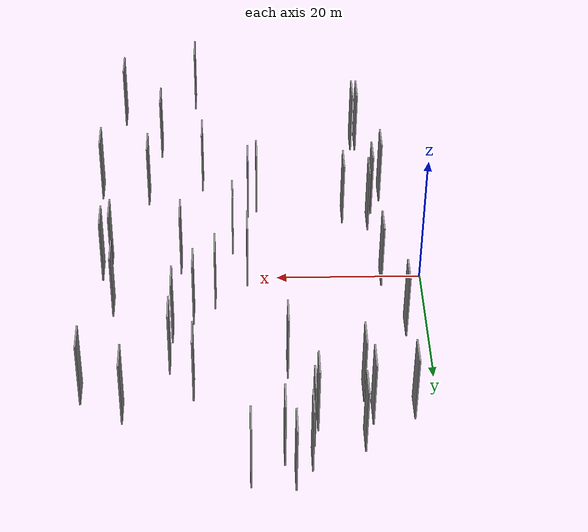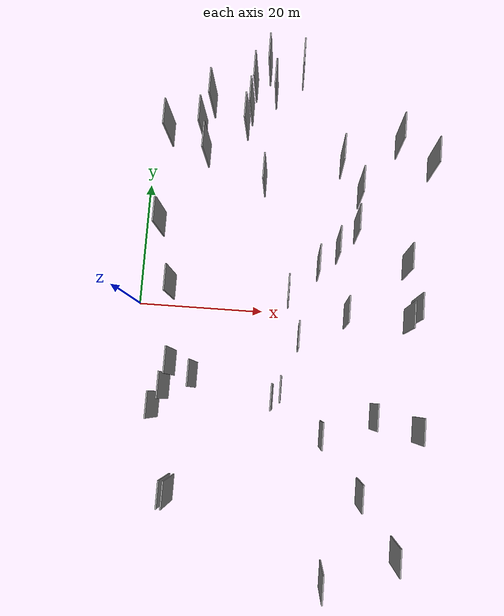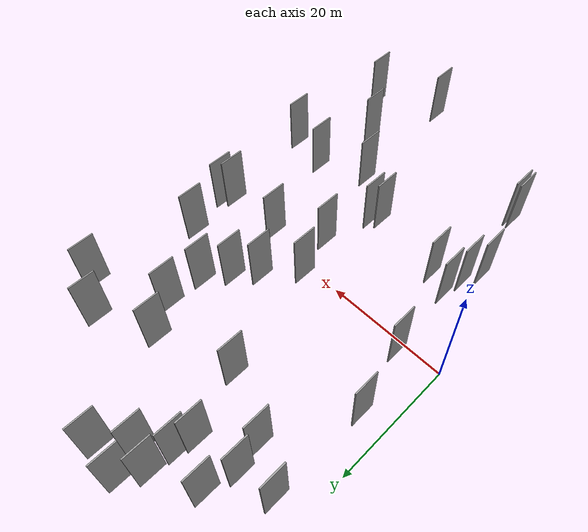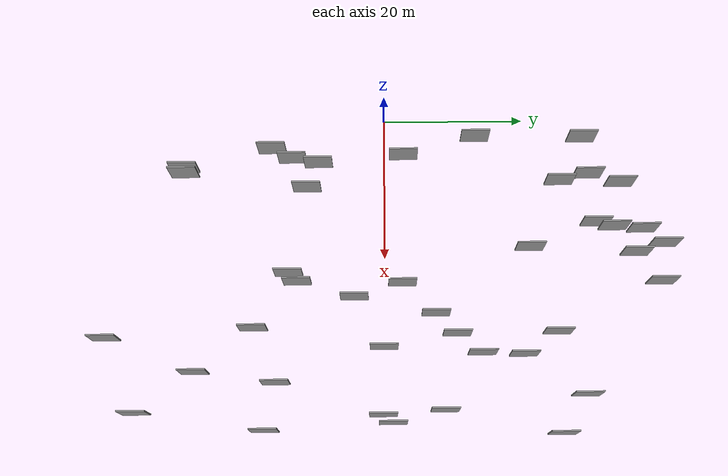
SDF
<sdf version="1.6">
 <world name="default">
  <scene>
   <sky><clouds><speed>12</speed></clouds></sky>
   <ambient>0.4 0.4 0.4 1</ambient>
   <background>0.7 0.7 0.7 1</background>
   <shadows>1</shadows>
  </scene>
  <gravity>0 0 -9.8066</gravity>
  <magnetic_field>6e-06 2.3e-05 -4.2e-05</magnetic_field>
  <physics default="0" name="default_physics" type="ode">
   <ode>
    <solver>
     <type>quick</type>
     <iters>10</iters>
     <sor>1.0</sor>
     <use_dynamic_moi_rescaling>0</use_dynamic_moi_rescaling>
    </solver>
    <constraints>
     <cfm>0</cfm>
     <erp>0.2</erp>
     <contact_max_correcting_vel>100</contact_max_correcting_vel>
     <contact_surface_layer>0.001</contact_surface_layer>
    </constraints>
   </ode>
   <max_step_size>0.004</max_step_size>
   <real_time_factor>1</real_time_factor>
   <real_time_update_rate>250</real_time_update_rate>
  </physics>
  <light name="sun" type="directional">
   <pose>0 0 10 0 0 0</pose>
   <diffuse>0.8 0.8 0.8 1</diffuse>
   <specular>0.2 0.2 0.2 1</specular>
   <attenuation>
    <range>1000</range>
    <constant>0.9</constant>
    <linear>0.01</linear>
    <quadratic>0.001</quadratic>
   </attenuation>
   <direction>-0.5 0.1 -0.9</direction>
  </light>
  <model name="grey_wall_1">
   <static>1</static>
   <pose>42.2858 8.4306 2.5 0.000000 0.000000 1.570796</pose>
   <link name="link">
    <pose>0 0 5.00 0 0 0</pose>
    <collision name="collision"><geometry><box><size>4.00 0.2 10.00</size></box></geometry></collision>
    <visual name="visual">
     <cast_shadows>0</cast_shadows>
     <geometry><box><size>4.00 0.2 10.00</size></box></geometry>
     <material>
      <script>
       <uri>model://grey_wall/materials/scripts</uri>
       <uri>model://grey_wall/materials/textures</uri>
       <name>vrc/grey_wall</name>
      </script>
     </material>
    </visual>
   </link>
  </model>
  <model name="grey_wall_2">
   <static>1</static>
   <pose>9.9759 33.6062 2.5 0.000000 0.000000 1.570796</pose>
   <link name="link">
    <pose>0 0 5.00 0 0 0</pose>
    <collision name="collision"><geometry><box><size>4.00 0.2 10.00</size></box></geometry></collision>
    <visual name="visual">
     <cast_shadows>0</cast_shadows>
     <geometry><box><size>4.00 0.2 10.00</size></box></geometry>
     <material>
      <script>
       <uri>model://grey_wall/materials/scripts</uri>
       <uri>model://grey_wall/materials/textures</uri>
       <name>vrc/grey_wall</name>
      </script>
     </material>
    </visual>
   </link>
  </model>
  <model name="grey_wall_3">
   <static>1</static>
   <pose>7.5965 -28.5167 2.5 0.000000 0.000000 1.570796</pose>
   <link name="link">
    <pose>0 0 5.00 0 0 0</pose>
    <collision name="collision"><geometry><box><size>4.00 0.2 10.00</size></box></geometry></collision>
    <visual name="visual">
     <cast_shadows>0</cast_shadows>
     <geometry><box><size>4.00 0.2 10.00</size></box></geometry>
     <material>
      <script>
       <uri>model://grey_wall/materials/scripts</uri>
       <uri>model://grey_wall/materials/textures</uri>
       <name>vrc/grey_wall</name>
      </script>
     </material>
    </visual>
   </link>
  </model>
  <model name="grey_wall_4">
   <static>1</static>
   <pose>30.5016 -18.7992 2.5 0.000000 0.000000 1.570796</pose>
   <link name="link">
    <pose>0 0 5.00 0 0 0</pose>
    <collision name="collision"><geometry><box><size>4.00 0.2 10.00</size></box></geometry></collision>
    <visual name="visual">
     <cast_shadows>0</cast_shadows>
     <geometry><box><size>4.00 0.2 10.00</size></box></geometry>
     <material>
      <script>
       <uri>model://grey_wall/materials/scripts</uri>
       <uri>model://grey_wall/materials/textures</uri>
       <name>vrc/grey_wall</name>
      </script>
     </material>
    </visual>
   </link>
  </model>
  <model name="grey_wall_5">
   <static>1</static>
   <pose>3.4285 28.2088 2.5 0.000000 0.000000 1.570796</pose>
   <link name="link">
    <pose>0 0 5.00 0 0 0</pose>
    <collision name="collision"><geometry><box><size>4.00 0.2 10.00</size></box></geometry></collision>
    <visual name="visual">
     <cast_shadows>0</cast_shadows>
     <geometry><box><size>4.00 0.2 10.00</size></box></geometry>
     <material>
      <script>
       <uri>model://grey_wall/materials/scripts</uri>
       <uri>model://grey_wall/materials/textures</uri>
       <name>vrc/grey_wall</name>
      </script>
     </material>
    </visual>
   </link>
  </model>
  <model name="grey_wall_6">
   <static>1</static>
   <pose>16.2536 32.6822 2.5 0.000000 0.000000 1.570796</pose>
   <link name="link">
    <pose>0 0 5.00 0 0 0</pose>
    <collision name="collision"><geometry><box><size>4.00 0.2 10.00</size></box></geometry></collision>
    <visual name="visual">
     <cast_shadows>0</cast_shadows>
     <geometry><box><size>4.00 0.2 10.00</size></box></geometry>
     <material>
      <script>
       <uri>model://grey_wall/materials/scripts</uri>
       <uri>model://grey_wall/materials/textures</uri>
       <name>vrc/grey_wall</name>
      </script>
     </material>
    </visual>
   </link>
  </model>
  <model name="grey_wall_7">
   <static>1</static>
   <pose>22.7090 -13.7084 2.5 0.000000 0.000000 1.570796</pose>
   <link name="link">
    <pose>0 0 5.00 0 0 0</pose>
    <collision name="collision"><geometry><box><size>4.00 0.2 10.00</size></box></geometry></collision>
    <visual name="visual">
     <cast_shadows>0</cast_shadows>
     <geometry><box><size>4.00 0.2 10.00</size></box></geometry>
     <material>
      <script>
       <uri>model://grey_wall/materials/scripts</uri>
       <uri>model://grey_wall/materials/textures</uri>
       <name>vrc/grey_wall</name>
      </script>
     </material>
    </visual>
   </link>
  </model>
  <model name="grey_wall_8">
   <static>1</static>
   <pose>45.6253 25.0832 2.5 0.000000 0.000000 1.570796</pose>
   <link name="link">
    <pose>0 0 5.00 0 0 0</pose>
    <collision name="collision"><geometry><box><size>4.00 0.2 10.00</size></box></geometry></collision>
    <visual name="visual">
     <cast_shadows>0</cast_shadows>
     <geometry><box><size>4.00 0.2 10.00</size></box></geometry>
     <material>
      <script>
       <uri>model://grey_wall/materials/scripts</uri>
       <uri>model://grey_wall/materials/textures</uri>
       <name>vrc/grey_wall</name>
      </script>
     </material>
    </visual>
   </link>
  </model>
  <model name="grey_wall_9">
   <static>1</static>
   <pose>15.6876 30.0707 2.5 0.000000 0.000000 1.570796</pose>
   <link name="link">
    <pose>0 0 5.00 0 0 0</pose>
    <collision name="collision"><geometry><box><size>4.00 0.2 10.00</size></box></geometry></collision>
    <visual name="visual">
     <cast_shadows>0</cast_shadows>
     <geometry><box><size>4.00 0.2 10.00</size></box></geometry>
     <material>
      <script>
       <uri>model://grey_wall/materials/scripts</uri>
       <uri>model://grey_wall/materials/textures</uri>
       <name>vrc/grey_wall</name>
      </script>
     </material>
    </visual>
   </link>
  </model>
  <model name="grey_wall_10">
   <static>1</static>
   <pose>16.6272 36.7826 2.5 0.000000 0.000000 1.570796</pose>
   <link name="link">
    <pose>0 0 5.00 0 0 0</pose>
    <collision name="collision"><geometry><box><size>4.00 0.2 10.00</size></box></geometry></collision>
    <visual name="visual">
     <cast_shadows>0</cast_shadows>
     <geometry><box><size>4.00 0.2 10.00</size></box></geometry>
     <material>
      <script>
       <uri>model://grey_wall/materials/scripts</uri>
       <uri>model://grey_wall/materials/textures</uri>
       <name>vrc/grey_wall</name>
      </script>
     </material>
    </visual>
   </link>
  </model>
  <model name="grey_wall_11">
   <static>1</static>
   <pose>42.9296 -0.3088 2.5 0.000000 0.000000 1.570796</pose>
   <link name="link">
    <pose>0 0 5.00 0 0 0</pose>
    <collision name="collision"><geometry><box><size>4.00 0.2 10.00</size></box></geometry></collision>
    <visual name="visual">
     <cast_shadows>0</cast_shadows>
     <geometry><box><size>4.00 0.2 10.00</size></box></geometry>
     <material>
      <script>
       <uri>model://grey_wall/materials/scripts</uri>
       <uri>model://grey_wall/materials/textures</uri>
       <name>vrc/grey_wall</name>
      </script>
     </material>
    </visual>
   </link>
  </model>
  <model name="grey_wall_12">
   <static>1</static>
   <pose>24.1457 39.3764 2.5 0.000000 0.000000 1.570796</pose>
   <link name="link">
    <pose>0 0 5.00 0 0 0</pose>
    <collision name="collision"><geometry><box><size>4.00 0.2 10.00</size></box></geometry></collision>
    <visual name="visual">
     <cast_shadows>0</cast_shadows>
     <geometry><box><size>4.00 0.2 10.00</size></box></geometry>
     <material>
      <script>
       <uri>model://grey_wall/materials/scripts</uri>
       <uri>model://grey_wall/materials/textures</uri>
       <name>vrc/grey_wall</name>
      </script>
     </material>
    </visual>
   </link>
  </model>
  <model name="grey_wall_13">
   <static>1</static>
   <pose>19.9792 35.7818 2.5 0.000000 0.000000 1.570796</pose>
   <link name="link">
    <pose>0 0 5.00 0 0 0</pose>
    <collision name="collision"><geometry><box><size>4.00 0.2 10.00</size></box></geometry></collision>
    <visual name="visual">
     <cast_shadows>0</cast_shadows>
     <geometry><box><size>4.00 0.2 10.00</size></box></geometry>
     <material>
      <script>
       <uri>model://grey_wall/materials/scripts</uri>
       <uri>model://grey_wall/materials/textures</uri>
       <name>vrc/grey_wall</name>
      </script>
     </material>
    </visual>
   </link>
  </model>
  <model name="grey_wall_14">
   <static>1</static>
   <pose>6.9303 -9.3802 2.5 0.000000 0.000000 1.570796</pose>
   <link name="link">
    <pose>0 0 5.00 0 0 0</pose>
    <collision name="collision"><geometry><box><size>4.00 0.2 10.00</size></box></geometry></collision>
    <visual name="visual">
     <cast_shadows>0</cast_shadows>
     <geometry><box><size>4.00 0.2 10.00</size></box></geometry>
     <material>
      <script>
       <uri>model://grey_wall/materials/scripts</uri>
       <uri>model://grey_wall/materials/textures</uri>
       <name>vrc/grey_wall</name>
      </script>
     </material>
    </visual>
   </link>
  </model>
  <model name="grey_wall_15">
   <static>1</static>
   <pose>34.4124 19.6951 2.5 0.000000 0.000000 1.570796</pose>
   <link name="link">
    <pose>0 0 5.00 0 0 0</pose>
    <collision name="collision"><geometry><box><size>4.00 0.2 10.00</size></box></geometry></collision>
    <visual name="visual">
     <cast_shadows>0</cast_shadows>
     <geometry><box><size>4.00 0.2 10.00</size></box></geometry>
     <material>
      <script>
       <uri>model://grey_wall/materials/scripts</uri>
       <uri>model://grey_wall/materials/textures</uri>
       <name>vrc/grey_wall</name>
      </script>
     </material>
    </visual>
   </link>
  </model>
  <model name="grey_wall_16">
   <static>1</static>
   <pose>10.4565 -11.0433 2.5 0.000000 0.000000 1.570796</pose>
   <link name="link">
    <pose>0 0 5.00 0 0 0</pose>
    <collision name="collision"><geometry><box><size>4.00 0.2 10.00</size></box></geometry></collision>
    <visual name="visual">
     <cast_shadows>0</cast_shadows>
     <geometry><box><size>4.00 0.2 10.00</size></box></geometry>
     <material>
      <script>
       <uri>model://grey_wall/materials/scripts</uri>
       <uri>model://grey_wall/materials/textures</uri>
       <name>vrc/grey_wall</name>
      </script>
     </material>
    </visual>
   </link>
  </model>
  <model name="grey_wall_17">
   <static>1</static>
   <pose>31.4384 10.2214 2.5 0.000000 0.000000 1.570796</pose>
   <link name="link">
    <pose>0 0 5.00 0 0 0</pose>
    <collision name="collision"><geometry><box><size>4.00 0.2 10.00</size></box></geometry></collision>
    <visual name="visual">
     <cast_shadows>0</cast_shadows>
     <geometry><box><size>4.00 0.2 10.00</size></box></geometry>
     <material>
      <script>
       <uri>model://grey_wall/materials/scripts</uri>
       <uri>model://grey_wall/materials/textures</uri>
       <name>vrc/grey_wall</name>
      </script>
     </material>
    </visual>
   </link>
  </model>
  <model name="grey_wall_18">
   <static>1</static>
   <pose>34.1637 13.8082 2.5 0.000000 0.000000 1.570796</pose>
   <link name="link">
    <pose>0 0 5.00 0 0 0</pose>
    <collision name="collision"><geometry><box><size>4.00 0.2 10.00</size></box></geometry></collision>
    <visual name="visual">
     <cast_shadows>0</cast_shadows>
     <geometry><box><size>4.00 0.2 10.00</size></box></geometry>
     <material>
      <script>
       <uri>model://grey_wall/materials/scripts</uri>
       <uri>model://grey_wall/materials/textures</uri>
       <name>vrc/grey_wall</name>
      </script>
     </material>
    </visual>
   </link>
  </model>
  <model name="grey_wall_19">
   <static>1</static>
   <pose>4.8445 -16.0190 2.5 0.000000 0.000000 1.570796</pose>
   <link name="link">
    <pose>0 0 5.00 0 0 0</pose>
    <collision name="collision"><geometry><box><size>4.00 0.2 10.00</size></box></geometry></collision>
    <visual name="visual">
     <cast_shadows>0</cast_shadows>
     <geometry><box><size>4.00 0.2 10.00</size></box></geometry>
     <material>
      <script>
       <uri>model://grey_wall/materials/scripts</uri>
       <uri>model://grey_wall/materials/textures</uri>
       <name>vrc/grey_wall</name>
      </script>
     </material>
    </visual>
   </link>
  </model>
  <model name="grey_wall_20">
   <static>1</static>
   <pose>23.9570 -12.4858 2.5 0.000000 0.000000 1.570796</pose>
   <link name="link">
    <pose>0 0 5.00 0 0 0</pose>
    <collision name="collision"><geometry><box><size>4.00 0.2 10.00</size></box></geometry></collision>
    <visual name="visual">
     <cast_shadows>0</cast_shadows>
     <geometry><box><size>4.00 0.2 10.00</size></box></geometry>
     <material>
      <script>
       <uri>model://grey_wall/materials/scripts</uri>
       <uri>model://grey_wall/materials/textures</uri>
       <name>vrc/grey_wall</name>
      </script>
     </material>
    </visual>
   </link>
  </model>
  <model name="grey_wall_21">
   <static>1</static>
   <pose>6.2491 -13.1037 2.5 0.000000 0.000000 1.570796</pose>
   <link name="link">
    <pose>0 0 5.00 0 0 0</pose>
    <collision name="collision"><geometry><box><size>4.00 0.2 10.00</size></box></geometry></collision>
    <visual name="visual">
     <cast_shadows>0</cast_shadows>
     <geometry><box><size>4.00 0.2 10.00</size></box></geometry>
     <material>
      <script>
       <uri>model://grey_wall/materials/scripts</uri>
       <uri>model://grey_wall/materials/textures</uri>
       <name>vrc/grey_wall</name>
      </script>
     </material>
    </visual>
   </link>
  </model>
  <model name="grey_wall_22">
   <static>1</static>
   <pose>8.2654 -28.5808 2.5 0.000000 0.000000 1.570796</pose>
   <link name="link">
    <pose>0 0 5.00 0 0 0</pose>
    <collision name="collision"><geometry><box><size>4.00 0.2 10.00</size></box></geometry></collision>
    <visual name="visual">
     <cast_shadows>0</cast_shadows>
     <geometry><box><size>4.00 0.2 10.00</size></box></geometry>
     <material>
      <script>
       <uri>model://grey_wall/materials/scripts</uri>
       <uri>model://grey_wall/materials/textures</uri>
       <name>vrc/grey_wall</name>
      </script>
     </material>
    </visual>
   </link>
  </model>
  <model name="grey_wall_23">
   <static>1</static>
   <pose>19.1865 20.6902 2.5 0.000000 0.000000 1.570796</pose>
   <link name="link">
    <pose>0 0 5.00 0 0 0</pose>
    <collision name="collision"><geometry><box><size>4.00 0.2 10.00</size></box></geometry></collision>
    <visual name="visual">
     <cast_shadows>0</cast_shadows>
     <geometry><box><size>4.00 0.2 10.00</size></box></geometry>
     <material>
      <script>
       <uri>model://grey_wall/materials/scripts</uri>
       <uri>model://grey_wall/materials/textures</uri>
       <name>vrc/grey_wall</name>
      </script>
     </material>
    </visual>
   </link>
  </model>
  <model name="grey_wall_24">
   <static>1</static>
   <pose>40.1750 28.5296 2.5 0.000000 0.000000 1.570796</pose>
   <link name="link">
    <pose>0 0 5.00 0 0 0</pose>
    <collision name="collision"><geometry><box><size>4.00 0.2 10.00</size></box></geometry></collision>
    <visual name="visual">
     <cast_shadows>0</cast_shadows>
     <geometry><box><size>4.00 0.2 10.00</size></box></geometry>
     <material>
      <script>
       <uri>model://grey_wall/materials/scripts</uri>
       <uri>model://grey_wall/materials/textures</uri>
       <name>vrc/grey_wall</name>
      </script>
     </material>
    </visual>
   </link>
  </model>
  <model name="grey_wall_25">
   <static>1</static>
   <pose>8.7205 29.0586 2.5 0.000000 0.000000 1.570796</pose>
   <link name="link">
    <pose>0 0 5.00 0 0 0</pose>
    <collision name="collision"><geometry><box><size>4.00 0.2 10.00</size></box></geometry></collision>
    <visual name="visual">
     <cast_shadows>0</cast_shadows>
     <geometry><box><size>4.00 0.2 10.00</size></box></geometry>
     <material>
      <script>
       <uri>model://grey_wall/materials/scripts</uri>
       <uri>model://grey_wall/materials/textures</uri>
       <name>vrc/grey_wall</name>
      </script>
     </material>
    </visual>
   </link>
  </model>
  <model name="grey_wall_26">
   <static>1</static>
   <pose>28.5547 7.2209 2.5 0.000000 0.000000 1.570796</pose>
   <link name="link">
    <pose>0 0 5.00 0 0 0</pose>
    <collision name="collision"><geometry><box><size>4.00 0.2 10.00</size></box></geometry></collision>
    <visual name="visual">
     <cast_shadows>0</cast_shadows>
     <geometry><box><size>4.00 0.2 10.00</size></box></geometry>
     <material>
      <script>
       <uri>model://grey_wall/materials/scripts</uri>
       <uri>model://grey_wall/materials/textures</uri>
       <name>vrc/grey_wall</name>
      </script>
     </material>
    </visual>
   </link>
  </model>
  <model name="grey_wall_27">
   <static>1</static>
   <pose>42.4733 -35.5248 2.5 0.000000 0.000000 1.570796</pose>
   <link name="link">
    <pose>0 0 5.00 0 0 0</pose>
    <collision name="collision"><geometry><box><size>4.00 0.2 10.00</size></box></geometry></collision>
    <visual name="visual">
     <cast_shadows>0</cast_shadows>
     <geometry><box><size>4.00 0.2 10.00</size></box></geometry>
     <material>
      <script>
       <uri>model://grey_wall/materials/scripts</uri>
       <uri>model://grey_wall/materials/textures</uri>
       <name>vrc/grey_wall</name>
      </script>
     </material>
    </visual>
   </link>
  </model>
  <model name="grey_wall_28">
   <static>1</static>
   <pose>33.3011 -0.1617 2.5 0.000000 0.000000 1.570796</pose>
   <link name="link">
    <pose>0 0 5.00 0 0 0</pose>
    <collision name="collision"><geometry><box><size>4.00 0.2 10.00</size></box></geometry></collision>
    <visual name="visual">
     <cast_shadows>0</cast_shadows>
     <geometry><box><size>4.00 0.2 10.00</size></box></geometry>
     <material>
      <script>
       <uri>model://grey_wall/materials/scripts</uri>
       <uri>model://grey_wall/materials/textures</uri>
       <name>vrc/grey_wall</name>
      </script>
     </material>
    </visual>
   </link>
  </model>
  <model name="grey_wall_29">
   <static>1</static>
   <pose>18.7298 39.8571 2.5 0.000000 0.000000 1.570796</pose>
   <link name="link">
    <pose>0 0 5.00 0 0 0</pose>
    <collision name="collision"><geometry><box><size>4.00 0.2 10.00</size></box></geometry></collision>
    <visual name="visual">
     <cast_shadows>0</cast_shadows>
     <geometry><box><size>4.00 0.2 10.00</size></box></geometry>
     <material>
      <script>
       <uri>model://grey_wall/materials/scripts</uri>
       <uri>model://grey_wall/materials/textures</uri>
       <name>vrc/grey_wall</name>
      </script>
     </material>
    </visual>
   </link>
  </model>
  <model name="grey_wall_30">
   <static>1</static>
   <pose>44.0648 1.0657 2.5 0.000000 0.000000 1.570796</pose>
   <link name="link">
    <pose>0 0 5.00 0 0 0</pose>
    <collision name="collision"><geometry><box><size>4.00 0.2 10.00</size></box></geometry></collision>
    <visual name="visual">
     <cast_shadows>0</cast_shadows>
     <geometry><box><size>4.00 0.2 10.00</size></box></geometry>
     <material>
      <script>
       <uri>model://grey_wall/materials/scripts</uri>
       <uri>model://grey_wall/materials/textures</uri>
       <name>vrc/grey_wall</name>
      </script>
     </material>
    </visual>
   </link>
  </model>
  <model name="grey_wall_31">
   <static>1</static>
   <pose>31.8221 -39.8488 2.5 0.000000 0.000000 1.570796</pose>
   <link name="link">
    <pose>0 0 5.00 0 0 0</pose>
    <collision name="collision"><geometry><box><size>4.00 0.2 10.00</size></box></geometry></collision>
    <visual name="visual">
     <cast_shadows>0</cast_shadows>
     <geometry><box><size>4.00 0.2 10.00</size></box></geometry>
     <material>
      <script>
       <uri>model://grey_wall/materials/scripts</uri>
       <uri>model://grey_wall/materials/textures</uri>
       <name>vrc/grey_wall</name>
      </script>
     </material>
    </visual>
   </link>
  </model>
  <model name="grey_wall_32">
   <static>1</static>
   <pose>24.1970 2.5009 2.5 0.000000 0.000000 1.570796</pose>
   <link name="link">
    <pose>0 0 5.00 0 0 0</pose>
    <collision name="collision"><geometry><box><size>4.00 0.2 10.00</size></box></geometry></collision>
    <visual name="visual">
     <cast_shadows>0</cast_shadows>
     <geometry><box><size>4.00 0.2 10.00</size></box></geometry>
     <material>
      <script>
       <uri>model://grey_wall/materials/scripts</uri>
       <uri>model://grey_wall/materials/textures</uri>
       <name>vrc/grey_wall</name>
      </script>
     </material>
    </visual>
   </link>
  </model>
  <model name="grey_wall_33">
   <static>1</static>
   <pose>5.8471 2.7535 2.5 0.000000 0.000000 1.570796</pose>
   <link name="link">
    <pose>0 0 5.00 0 0 0</pose>
    <collision name="collision"><geometry><box><size>4.00 0.2 10.00</size></box></geometry></collision>
    <visual name="visual">
     <cast_shadows>0</cast_shadows>
     <geometry><box><size>4.00 0.2 10.00</size></box></geometry>
     <material>
      <script>
       <uri>model://grey_wall/materials/scripts</uri>
       <uri>model://grey_wall/materials/textures</uri>
       <name>vrc/grey_wall</name>
      </script>
     </material>
    </visual>
   </link>
  </model>
  <model name="grey_wall_34">
   <static>1</static>
   <pose>3.2713 12.9604 2.5 0.000000 0.000000 1.570796</pose>
   <link name="link">
    <pose>0 0 5.00 0 0 0</pose>
    <collision name="collision"><geometry><box><size>4.00 0.2 10.00</size></box></geometry></collision>
    <visual name="visual">
     <cast_shadows>0</cast_shadows>
     <geometry><box><size>4.00 0.2 10.00</size></box></geometry>
     <material>
      <script>
       <uri>model://grey_wall/materials/scripts</uri>
       <uri>model://grey_wall/materials/textures</uri>
       <name>vrc/grey_wall</name>
      </script>
     </material>
    </visual>
   </link>
  </model>
  <model name="grey_wall_35">
   <static>1</static>
   <pose>26.1697 -4.3527 2.5 0.000000 0.000000 1.570796</pose>
   <link name="link">
    <pose>0 0 5.00 0 0 0</pose>
    <collision name="collision"><geometry><box><size>4.00 0.2 10.00</size></box></geometry></collision>
    <visual name="visual">
     <cast_shadows>0</cast_shadows>
     <geometry><box><size>4.00 0.2 10.00</size></box></geometry>
     <material>
      <script>
       <uri>model://grey_wall/materials/scripts</uri>
       <uri>model://grey_wall/materials/textures</uri>
       <name>vrc/grey_wall</name>
      </script>
     </material>
    </visual>
   </link>
  </model>
  <model name="grey_wall_36">
   <static>1</static>
   <pose>36.7174 -27.1547 2.5 0.000000 0.000000 1.570796</pose>
   <link name="link">
    <pose>0 0 5.00 0 0 0</pose>
    <collision name="collision"><geometry><box><size>4.00 0.2 10.00</size></box></geometry></collision>
    <visual name="visual">
     <cast_shadows>0</cast_shadows>
     <geometry><box><size>4.00 0.2 10.00</size></box></geometry>
     <material>
      <script>
       <uri>model://grey_wall/materials/scripts</uri>
       <uri>model://grey_wall/materials/textures</uri>
       <name>vrc/grey_wall</name>
      </script>
     </material>
    </visual>
   </link>
  </model>
  <model name="grey_wall_37">
   <static>1</static>
   <pose>9.6466 24.9873 2.5 0.000000 0.000000 1.570796</pose>
   <link name="link">
    <pose>0 0 5.00 0 0 0</pose>
    <collision name="collision"><geometry><box><size>4.00 0.2 10.00</size></box></geometry></collision>
    <visual name="visual">
     <cast_shadows>0</cast_shadows>
     <geometry><box><size>4.00 0.2 10.00</size></box></geometry>
     <material>
      <script>
       <uri>model://grey_wall/materials/scripts</uri>
       <uri>model://grey_wall/materials/textures</uri>
       <name>vrc/grey_wall</name>
      </script>
     </material>
    </visual>
   </link>
  </model>
  <model name="grey_wall_38">
   <static>1</static>
   <pose>45.0489 -17.1890 2.5 0.000000 0.000000 1.570796</pose>
   <link name="link">
    <pose>0 0 5.00 0 0 0</pose>
    <collision name="collision"><geometry><box><size>4.00 0.2 10.00</size></box></geometry></collision>
    <visual name="visual">
     <cast_shadows>0</cast_shadows>
     <geometry><box><size>4.00 0.2 10.00</size></box></geometry>
     <material>
      <script>
       <uri>model://grey_wall/materials/scripts</uri>
       <uri>model://grey_wall/materials/textures</uri>
       <name>vrc/grey_wall</name>
      </script>
     </material>
    </visual>
   </link>
  </model>
  <model name="grey_wall_39">
   <static>1</static>
   <pose>31.2641 24.5390 2.5 0.000000 0.000000 1.570796</pose>
   <link name="link">
    <pose>0 0 5.00 0 0 0</pose>
    <collision name="collision"><geometry><box><size>4.00 0.2 10.00</size></box></geometry></collision>
    <visual name="visual">
     <cast_shadows>0</cast_shadows>
     <geometry><box><size>4.00 0.2 10.00</size></box></geometry>
     <material>
      <script>
       <uri>model://grey_wall/materials/scripts</uri>
       <uri>model://grey_wall/materials/textures</uri>
       <name>vrc/grey_wall</name>
      </script>
     </material>
    </visual>
   </link>
  </model>
  <model name="grey_wall_40">
   <static>1</static>
   <pose>38.2615 -15.5889 2.5 0.000000 0.000000 1.570796</pose>
   <link name="link">
    <pose>0 0 5.00 0 0 0</pose>
    <collision name="collision"><geometry><box><size>4.00 0.2 10.00</size></box></geometry></collision>
    <visual name="visual">
     <cast_shadows>0</cast_shadows>
     <geometry><box><size>4.00 0.2 10.00</size></box></geometry>
     <material>
      <script>
       <uri>model://grey_wall/materials/scripts</uri>
       <uri>model://grey_wall/materials/textures</uri>
       <name>vrc/grey_wall</name>
      </script>
     </material>
    </visual>
   </link>
  </model>
 </world>
</sdf>
